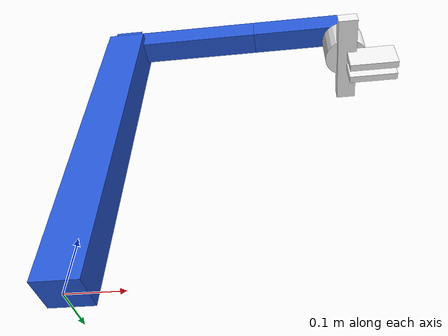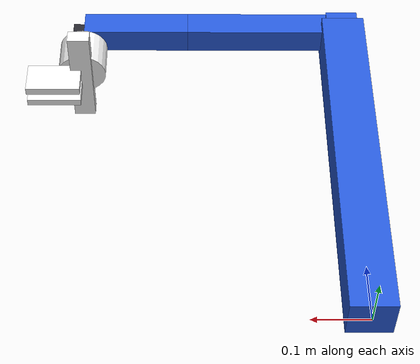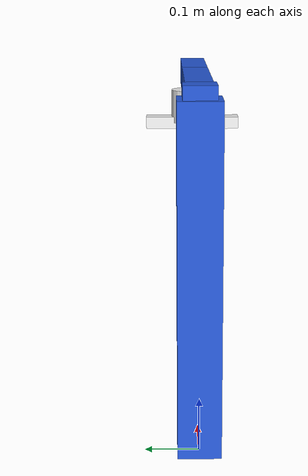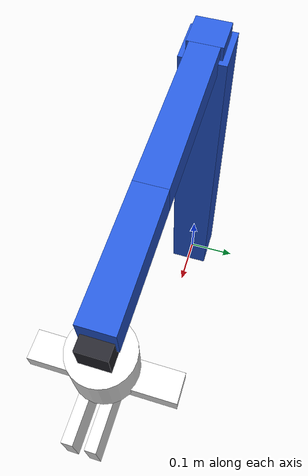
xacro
<?xml version="1.0"?>
<robot xmlns:xacro="http://www.ros.org/wiki/xacro" name="scara_arm_sim">

  <xacro:include filename="$(find arm_description)/urdf/arm.xacro"/>
  <xacro:include filename="$(find arm_description)/urdf/arm_ros2_control.xacro"/>

  <!-- goc co dinh xuong dat -->
  <link name="arm_world"/>

  <xacro:scara_arm parent="arm_world" xyz="0 0 0" rpy="0 0 0"/>

  <!-- ros2_control + gazebo plugin + vat lieu -->
  <xacro:arm_ros2_control/>
  <xacro:arm_gazebo_props/>

</robot>

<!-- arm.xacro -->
<robot xmlns:xacro="http://www.ros.org/wiki/xacro" name="scara_arm">

  <!-- ===== Thong so tay (so do that cua Duy) ===== -->
  <xacro:property name="arm_mount_z"  value="0.65"/>
  <xacro:property name="link1_len"    value="0.30"/>
  <xacro:property name="link2_len"    value="0.20"/>
  <xacro:property name="link_thick"   value="0.05"/>
  <xacro:property name="z_travel"     value="0.40"/>
  <xacro:property name="arm_mass"     value="0.5"/>
  <xacro:property name="wrist_motor"  value="0.042"/>
  <xacro:property name="wrist_len"    value="0.07"/>
  <xacro:property name="grip_open"    value="0.20"/>
  <xacro:property name="finger_r"     value="0.05"/>
  <xacro:property name="finger_thick" value="0.015"/>

  <xacro:macro name="arm_box_inertia" params="m x y z">
    <inertial>
      <mass value="${m}"/>
      <inertia ixx="${(m/12.0)*(y*y+z*z)}" ixy="0.0" ixz="0.0"
               iyy="${(m/12.0)*(x*x+z*z)}" iyz="0.0"
               izz="${(m/12.0)*(x*x+y*y)}"/>
    </inertial>
  </xacro:macro>

  <material name="arm_blue"><color rgba="0.15 0.35 0.85 1.0"/></material>
  <material name="arm_white"><color rgba="0.95 0.95 0.95 1.0"/></material>
  <material name="arm_dark"><color rgba="0.15 0.15 0.18 1.0"/></material>

  <xacro:macro name="scara_arm" params="parent xyz:='0 0 0' rpy:='0 0 0'">

    <link name="arm_base_link">
      <visual>
        <origin xyz="0 0 ${arm_mount_z/2}" rpy="0 0 0"/>
        <geometry><box size="0.08 0.08 ${arm_mount_z}"/></geometry>
        <material name="arm_blue"/>
      </visual>
      <collision>
        <origin xyz="0 0 ${arm_mount_z/2}" rpy="0 0 0"/>
        <geometry><box size="0.08 0.08 ${arm_mount_z}"/></geometry>
      </collision>
      <xacro:arm_box_inertia m="${arm_mass}" x="0.08" y="0.08" z="${arm_mount_z}"/>
    </link>

    <joint name="arm_mount_joint" type="fixed">
      <parent link="${parent}"/>
      <child link="arm_base_link"/>
      <origin xyz="${xyz}" rpy="${rpy}"/>
    </joint>

    <link name="arm_z_link">
      <visual>
        <origin xyz="0 0 0" rpy="0 0 0"/>
        <geometry><box size="0.06 0.06 0.05"/></geometry>
        <material name="arm_blue"/>
      </visual>
      <collision>
        <origin xyz="0 0 0" rpy="0 0 0"/>
        <geometry><box size="0.06 0.06 0.05"/></geometry>
      </collision>
      <xacro:arm_box_inertia m="0.2" x="0.06" y="0.06" z="0.05"/>
    </link>
    <joint name="J_z" type="prismatic">
      <parent link="arm_base_link"/>
      <child link="arm_z_link"/>
      <origin xyz="0 0 ${arm_mount_z}" rpy="0 0 0"/>
      <axis xyz="0 0 1"/>
      <limit lower="${-z_travel}" upper="0.0" effort="50.0" velocity="0.1"/>
    </joint>

    <link name="arm_link1">
      <visual>
        <origin xyz="${link1_len/2} 0 0" rpy="0 0 0"/>
        <geometry><box size="${link1_len} ${link_thick} ${link_thick}"/></geometry>
        <material name="arm_blue"/>
      </visual>
      <collision>
        <origin xyz="${link1_len/2} 0 0" rpy="0 0 0"/>
        <geometry><box size="${link1_len} ${link_thick} ${link_thick}"/></geometry>
      </collision>
      <xacro:arm_box_inertia m="0.3" x="${link1_len}" y="${link_thick}" z="${link_thick}"/>
    </link>
    <joint name="J1" type="revolute">
      <parent link="arm_z_link"/>
      <child link="arm_link1"/>
      <origin xyz="0 0 0" rpy="0 0 0"/>
      <axis xyz="0 0 1"/>
      <limit lower="${-pi}" upper="${pi}" effort="10.0" velocity="2.0"/>
    </joint>

    <link name="arm_link2">
      <visual>
        <origin xyz="${link2_len/2} 0 0" rpy="0 0 0"/>
        <geometry><box size="${link2_len} ${link_thick} ${link_thick}"/></geometry>
        <material name="arm_blue"/>
      </visual>
      <visual>
        <origin xyz="${link2_len} 0 ${-wrist_motor/2}" rpy="0 0 0"/>
        <geometry><box size="${wrist_motor} ${wrist_motor} ${wrist_motor}"/></geometry>
        <material name="arm_dark"/>
      </visual>
      <collision>
        <origin xyz="${link2_len/2} 0 0" rpy="0 0 0"/>
        <geometry><box size="${link2_len} ${link_thick} ${link_thick}"/></geometry>
      </collision>
      <xacro:arm_box_inertia m="0.2" x="${link2_len}" y="${link_thick}" z="${link_thick}"/>
    </link>
    <joint name="J2" type="revolute">
      <parent link="arm_link1"/>
      <child link="arm_link2"/>
      <origin xyz="${link1_len} 0 0" rpy="0 0 0"/>
      <axis xyz="0 0 1"/>
      <limit lower="${-pi}" upper="${pi}" effort="10.0" velocity="2.0"/>
    </joint>

    <link name="arm_wrist">
      <visual>
        <origin xyz="0 0 ${-wrist_len/2}" rpy="0 0 0"/>
        <geometry><cylinder radius="0.045" length="${wrist_len}"/></geometry>
        <material name="arm_white"/>
      </visual>
      <collision>
        <origin xyz="0 0 ${-wrist_len/2}" rpy="0 0 0"/>
        <geometry><cylinder radius="0.045" length="${wrist_len}"/></geometry>
      </collision>
      <xacro:arm_box_inertia m="0.15" x="0.09" y="0.09" z="${wrist_len}"/>
    </link>
    <joint name="J_wrist" type="continuous">
      <parent link="arm_link2"/>
      <child link="arm_wrist"/>
      <origin xyz="${link2_len} 0 ${-wrist_motor}" rpy="0 0 0"/>
      <axis xyz="0 0 1"/>
    </joint>

    <link name="arm_gripper_base">
      <visual>
        <origin xyz="0 0 0" rpy="0 0 0"/>
        <geometry><box size="0.04 ${grip_open} 0.025"/></geometry>
        <material name="arm_white"/>
      </visual>
      <collision>
        <origin xyz="0 0 0" rpy="0 0 0"/>
        <geometry><box size="0.04 ${grip_open} 0.025"/></geometry>
      </collision>
      <xacro:arm_box_inertia m="0.1" x="0.04" y="${grip_open}" z="0.025"/>
    </link>
    <joint name="J_grip_mount" type="fixed">
      <parent link="arm_wrist"/>
      <child link="arm_gripper_base"/>
      <origin xyz="0 0 ${-wrist_len}" rpy="0 0 0"/>
    </joint>

    <!-- 2 ngam: dung box don gian co COLLISION de kep duoc vat trong Gazebo -->
    <xacro:macro name="grip_finger" params="name">
      <link name="${name}">
        <visual>
          <origin xyz="${finger_r} 0 -0.03" rpy="0 0 0"/>
          <geometry><box size="${finger_r*2} ${finger_thick} 0.06"/></geometry>
          <material name="arm_white"/>
        </visual>
        <collision>
          <origin xyz="${finger_r} 0 -0.03" rpy="0 0 0"/>
          <geometry><box size="${finger_r*2} ${finger_thick} 0.06"/></geometry>
        </collision>
        <xacro:arm_box_inertia m="0.03" x="${finger_r*2}" y="${finger_thick}" z="0.06"/>
      </link>
    </xacro:macro>

    <xacro:grip_finger name="arm_finger_left"/>
    <xacro:grip_finger name="arm_finger_right"/>

    <joint name="J_grip" type="prismatic">
      <parent link="arm_gripper_base"/>
      <child link="arm_finger_left"/>
      <origin xyz="0 ${finger_thick} 0" rpy="0 0 0"/>
      <axis xyz="0 1 0"/>
      <limit lower="0.0" upper="${grip_open/2}" effort="20.0" velocity="0.1"/>
    </joint>
    <joint name="J_grip_mirror" type="prismatic">
      <parent link="arm_gripper_base"/>
      <child link="arm_finger_right"/>
      <origin xyz="0 ${-finger_thick} 0" rpy="0 0 0"/>
      <axis xyz="0 -1 0"/>
      <mimic joint="J_grip" multiplier="1.0" offset="0.0"/>
      <limit lower="0.0" upper="${grip_open/2}" effort="20.0" velocity="0.1"/>
    </joint>

  </xacro:macro>

</robot>
